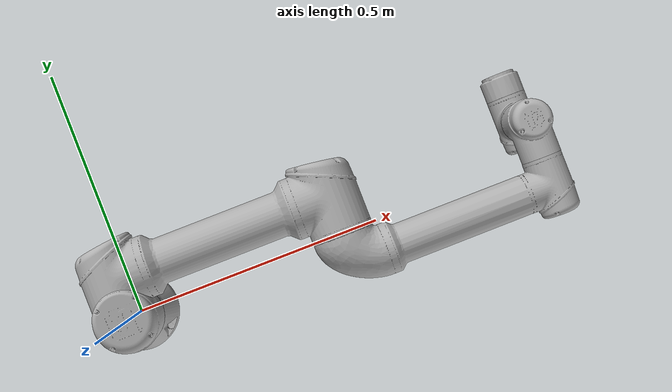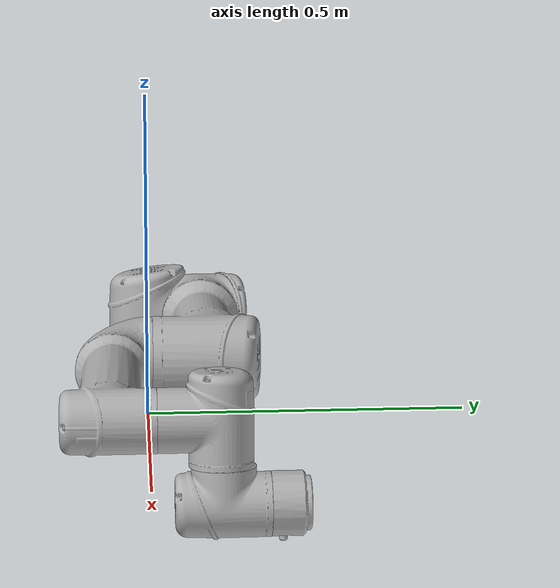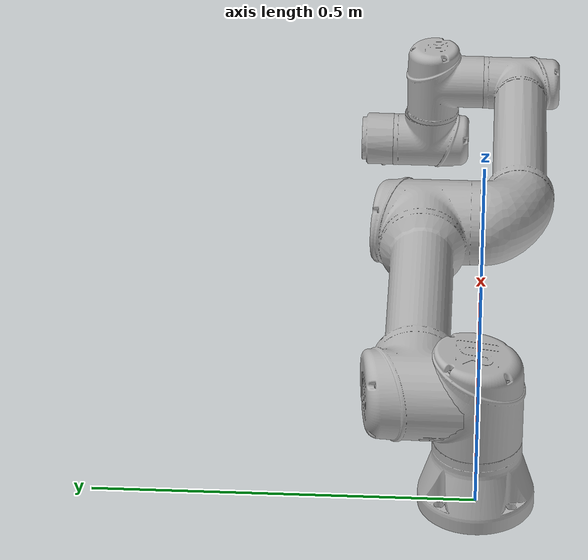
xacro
<?xml version="1.0"?>
<robot xmlns:xacro="http://ros.org/wiki/xacro"
       name="ur5e" >

  <!-- common stuff -->
  <xacro:include filename="$(find ur5_with_hand_gazebo)/urdf/common.gazebo.xacro" />

  <!-- ur5e -->
  <xacro:include filename="$(find ur5_with_hand_gazebo)/urdf/ur5e.urdf.xacro" />

  <!-- arm -->
  <xacro:arg name="kinematics_config" default="$(find ur_e_description)/config/ur5e_default.yaml"/>
  <xacro:ur5e_robot prefix="" joint_limited="false"/>

  <link name="world" />

  <joint name="world_joint" type="fixed">
    <parent link="world" />
    <child link = "base_link" />
    <origin xyz="0.0 0.0 0.0" rpy="0.0 0.0 0.0" />
  </joint>

</robot>

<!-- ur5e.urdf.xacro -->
<!-- |    Gizem: I changed this document from ur5-fhdesc2.urdf (on ur5e.urdf.xacro) for ur5e to UR5e parameters for OpenRave compatibility                                                     | -->
<!-- |    values are from there: https://www.universal-robots.com/articles/ur/application-installation/dh-parameters-for-calculations-of-kinematics-and-dynamics/    | -->
<!-- |    Inertia and joint limits are from there: $(find ur_e_description)/urdf/ur5e_robot.urdf.xacro      | -->
          <!-- |                                    xacro ur5e_robot.urdf.xacro > ur5e.urdf                 | -->
          <!-- |                                    from the created ur5e.urdf file.                        | -->
<robot name="ur5e" xmlns:xacro="http://ros.org/wiki/xacro">

  <xacro:include filename="$(find ur_e_description)/urdf/ur.transmission.xacro" />
  <xacro:include filename="$(find ur5_with_hand_gazebo)/urdf/ur.gazebo.xacro" />

  <xacro:ur_arm_gazebo prefix="" />

  <xacro:macro name="ur5e_robot" params="prefix joint_limited
     shoulder_pan_lower_limit:=${-pi}    shoulder_pan_upper_limit:=${pi}
     shoulder_lift_lower_limit:=${-pi}    shoulder_lift_upper_limit:=${pi}
     elbow_joint_lower_limit:=${-pi}    elbow_joint_upper_limit:=${pi}
     wrist_1_lower_limit:=${-pi}    wrist_1_upper_limit:=${pi}
     wrist_2_lower_limit:=${-pi}    wrist_2_upper_limit:=${pi}
     wrist_3_lower_limit:=${-pi}    wrist_3_upper_limit:=${pi}">

      <link name="base_link">
        <visual>
          <geometry>
            <mesh filename="package://ur_e_description/meshes/ur5e/visual/base.dae"/>
          </geometry>
          <material name="LightGrey">
            <color rgba="0.7 0.7 0.7 1.0"/>
          </material>
        </visual>
        <collision>
          <geometry>
            <mesh filename="package://ur_e_description/meshes/ur5e/collision/base.stl"/>
          </geometry>
        </collision>
        <inertial>
          <mass value="4.0"/>
          <origin rpy="0 0 0" xyz="0.0 0.0 0.0"/>
          <inertia ixx="0.00443333156" ixy="0.0" ixz="0.0" iyy="0.00443333156" iyz="0.0" izz="0.0072"/>
        </inertial>
      </link>
      <joint name="shoulder_pan_joint" type="revolute">
        <parent link="base_link"/>
        <child link="shoulder_link"/>
        <origin rpy="0.0 0.0 0.0" xyz="0.0 0.0 0.1625"/>
        <axis xyz="0 0 1"/>
        <limit effort="150.0" lower="-6.28318530718" upper="6.28318530718" velocity="3.14"/>
        <dynamics damping="0.0" friction="0.0"/>
      </joint>
      <link name="shoulder_link">
        <visual>
          <geometry>
            <mesh filename="package://ur_e_description/meshes/ur5e/visual/shoulder.dae"/>
          </geometry>
          <material name="LightGrey">
            <color rgba="0.7 0.7 0.7 1.0"/>
          </material>
        </visual>
        <collision>
          <geometry>
            <mesh filename="package://ur_e_description/meshes/ur5e/collision/shoulder.stl"/>
          </geometry>
        </collision>
        <inertial>
          <mass value="3.7"/>
          <origin rpy="0 0 0" xyz="0.0 0.0 0.0"/>
          <inertia ixx="0.010267495893" ixy="0.0" ixz="0.0" iyy="0.010267495893" iyz="0.0" izz="0.00666"/>
        </inertial>
      </link>
      <joint name="shoulder_lift_joint" type="revolute">
        <parent link="shoulder_link"/>
        <child link="upper_arm_link"/>
        <origin rpy="0.0 1.57079632679 0.0" xyz="0.0 0.0812 0.0"/>  <!-- Gizem: 0.08 = 0.1625/2  -->
        <axis xyz="0 1 0"/>
        <limit effort="150.0" lower="-6.28318530718" upper="6.28318530718" velocity="3.14"/>
        <dynamics damping="0.0" friction="0.0"/>
      </joint>
      <link name="upper_arm_link">
        <visual>
          <geometry>
            <mesh filename="package://ur_e_description/meshes/ur5e/visual/upperarm.dae"/>
          </geometry>
          <material name="LightGrey">
            <color rgba="0.7 0.7 0.7 1.0"/>
          </material>
        </visual>
        <collision>
          <geometry>
            <mesh filename="package://ur_e_description/meshes/ur5e/collision/upperarm.stl"/>
          </geometry>
        </collision>
            <inertial>
          <mass value="8.393"/>
          <origin rpy="0 1.57079632679 0" xyz="-0.2125 0.0 0.138"/>
          <inertia ixx="0.138134736413" ixy="0.0" ixz="0.0" iyy="0.138134736413" iyz="0.0" izz="0.0236053125"/>
        </inertial>
      </link>
      <joint name="elbow_joint" type="revolute">
        <parent link="upper_arm_link"/>
        <child link="forearm_link"/>
        <origin rpy="0.0 0.0 0.0" xyz="0.0 -0.13 0.425"/>
        <axis xyz="0 1 0"/>
        <limit effort="150.0" lower="-3.14159265359" upper="3.14159265359" velocity="3.14"/>
        <dynamics damping="0.0" friction="0.0"/>
      </joint>
      <link name="forearm_link">
        <visual>
          <geometry>
            <mesh filename="package://ur_e_description/meshes/ur5e/visual/forearm.dae"/>
          </geometry>
          <material name="LightGrey">
            <color rgba="0.7 0.7 0.7 1.0"/>
          </material>
        </visual>
        <collision>
          <geometry>
            <mesh filename="package://ur_e_description/meshes/ur5e/collision/forearm.stl"/>
          </geometry>
        </collision>
        <inertial>
          <mass value="2.275"/>
          <origin rpy="0 1.57079632679 0" xyz="-0.2125 0.0 0.007"/>
          <inertia ixx="0.0323610733889" ixy="0.0" ixz="0.0" iyy="0.0323610733889" iyz="0.0" izz="0.0063984375"/>
        </inertial>
      </link>
      <joint name="wrist_1_joint" type="revolute">
        <parent link="forearm_link"/>
        <child link="wrist_1_link"/>
        <origin rpy="0.0 1.57079632679 0.0" xyz="0.0 0.0 0.3922"/>
        <axis xyz="0 1 0"/>
        <limit effort="28.0" lower="-6.28318530718" upper="6.28318530718" velocity="6.28"/>
        <dynamics damping="0.0" friction="0.0"/>
      </joint>
      <link name="wrist_1_link">
        <visual>
          <geometry>
            <mesh filename="package://ur_e_description/meshes/ur5e/visual/wrist1.dae"/>
          </geometry>
          <material name="LightGrey">
            <color rgba="0.7 0.7 0.7 1.0"/>
          </material>
        </visual>
        <collision>
          <geometry>
            <mesh filename="package://ur_e_description/meshes/ur5e/collision/wrist1.stl"/>
          </geometry>
        </collision>
        <inertial>
          <mass value="1.219"/>
          <origin rpy="0 0 0" xyz="0.0 0.0 0.0"/>
          <inertia ixx="0.00272396513625" ixy="0.0" ixz="0.0" iyy="0.00272396513625" iyz="0.0" izz="0.0034284375"/>
        </inertial>
      </link>
      <joint name="wrist_2_joint" type="revolute">
        <parent link="wrist_1_link"/>
        <child link="wrist_2_link"/>
        <origin rpy="0.0 0.0 0.0" xyz="0.0 0.13 0.0"/>
        <axis xyz="0 0 1"/>
        <limit effort="28.0" lower="-6.28318530718" upper="6.28318530718" velocity="6.28"/>
        <dynamics damping="0.0" friction="0.0"/>
      </joint>
      <link name="wrist_2_link">
        <visual>
          <geometry>
            <mesh filename="package://ur_e_description/meshes/ur5e/visual/wrist2.dae"/>
          </geometry>
          <material name="LightGrey">
            <color rgba="0.7 0.7 0.7 1.0"/>
          </material>
        </visual>
        <collision>
          <geometry>
            <mesh filename="package://ur_e_description/meshes/ur5e/collision/wrist2.stl"/>
          </geometry>
        </collision>
        <inertial>
          <mass value="1.219"/>
          <origin rpy="0 0 0" xyz="0.0 0.0 0.0"/>
          <inertia ixx="0.00272194058122" ixy="0.0" ixz="0.0" iyy="0.00272194058122" iyz="0.0" izz="0.0034284375"/>
        </inertial>
      </link>
      <joint name="wrist_3_joint" type="revolute">
        <parent link="wrist_2_link"/>
        <child link="wrist_3_link"/>
        <origin rpy="0.0 0.0 0.0" xyz="0.0 0.0 0.0996"/>
        <axis xyz="0 1 0"/>
        <limit effort="28.0" lower="-6.28318530718" upper="6.28318530718" velocity="6.28"/>
        <dynamics damping="0.0" friction="0.0"/>
      </joint>
      <link name="wrist_3_link">
        <visual>
          <geometry>
            <mesh filename="package://ur_e_description/meshes/ur5e/visual/wrist3.dae"/>
          </geometry>
          <material name="LightGrey">
            <color rgba="0.7 0.7 0.7 1.0"/>
          </material>
        </visual>
        <collision>
          <geometry>
            <mesh filename="package://ur_e_description/meshes/ur5e/collision/wrist3.stl"/>
          </geometry>
        </collision>
        <inertial>
          <mass value="0.1879"/>
          <origin rpy="0 0 0" xyz="0.0 0.0 -0.025"/>
          <inertia ixx="0.000134270154625" ixy="0.0" ixz="0.0" iyy="0.000134270154625" iyz="0.0" izz="0.00019024875"/>
        </inertial>
      </link>
      <joint name="ee_fixed_joint" type="fixed">
        <parent link="wrist_3_link"/>
        <child link="ee_link"/>
        <origin rpy="0.0 0.0 1.57079632679" xyz="0.0 0.0 0.0"/>
      </joint>
      <link name="ee_link">
        <collision>
          <geometry>
            <box size="0.01 0.01 0.01"/>
          </geometry>
          <origin rpy="0 0 0" xyz="-0.01 0 0"/>
        </collision>
      </link>
      <transmission name="shoulder_pan_trans">
        <type>transmission_interface/SimpleTransmission</type>
        <joint name="shoulder_pan_joint">
          <hardwareInterface>PositionJointInterface</hardwareInterface>
        </joint>
        <actuator name="shoulder_pan_motor">
          <mechanicalReduction>1</mechanicalReduction>
        </actuator>
      </transmission>
      <transmission name="shoulder_lift_trans">
        <type>transmission_interface/SimpleTransmission</type>
        <joint name="shoulder_lift_joint">
          <hardwareInterface>PositionJointInterface</hardwareInterface>
        </joint>
        <actuator name="shoulder_lift_motor">
          <mechanicalReduction>1</mechanicalReduction>
        </actuator>
      </transmission>
      <transmission name="elbow_trans">
        <type>transmission_interface/SimpleTransmission</type>
        <joint name="elbow_joint">
          <hardwareInterface>PositionJointInterface</hardwareInterface>
        </joint>
        <actuator name="elbow_motor">
          <mechanicalReduction>1</mechanicalReduction>
        </actuator>
      </transmission>
      <transmission name="wrist_1_trans">
        <type>transmission_interface/SimpleTransmission</type>
        <joint name="wrist_1_joint">
          <hardwareInterface>PositionJointInterface</hardwareInterface>
        </joint>
        <actuator name="wrist_1_motor">
          <mechanicalReduction>1</mechanicalReduction>
        </actuator>
      </transmission>
      <transmission name="wrist_2_trans">
        <type>transmission_interface/SimpleTransmission</type>
        <joint name="wrist_2_joint">
          <hardwareInterface>PositionJointInterface</hardwareInterface>
        </joint>
        <actuator name="wrist_2_motor">
          <mechanicalReduction>1</mechanicalReduction>
        </actuator>
      </transmission>
      <transmission name="wrist_3_trans">
        <type>transmission_interface/SimpleTransmission</type>
        <joint name="wrist_3_joint">
          <hardwareInterface>PositionJointInterface</hardwareInterface>
        </joint>
        <actuator name="wrist_3_motor">
          <mechanicalReduction>1</mechanicalReduction>
        </actuator>
      </transmission>
      <!-- nothing to do here at the moment -->
      <!-- ROS base_link to UR 'Base' Coordinates transform -->
      <link name="base"/>
      <joint name="base_link-base_fixed_joint" type="fixed">
        <!-- NOTE: this rotation is only needed as long as base_link itself is
                    not corrected wrt the real robot (ie: rotated over 180
                    degrees)
          -->
        <origin rpy="0 0 -3.14159265359" xyz="0 0 0"/>
        <parent link="base_link"/>
        <child link="base"/>
      </joint>
      <!-- Frame coincident with all-zeros TCP on UR controller -->
      <link name="tool0"/>
      <joint name="wrist_3_link-tool0_fixed_joint" type="fixed">
        <origin rpy="-1.57079632679 0 0" xyz="0 0.0822 0"/>   <!-- Gizem: 0.0922 -> 0.082 based on Gazebo readings. Maybe a version issue-->
        <parent link="wrist_3_link"/>
        <child link="tool0"/>
      </joint>
  </xacro:macro>
</robot>
